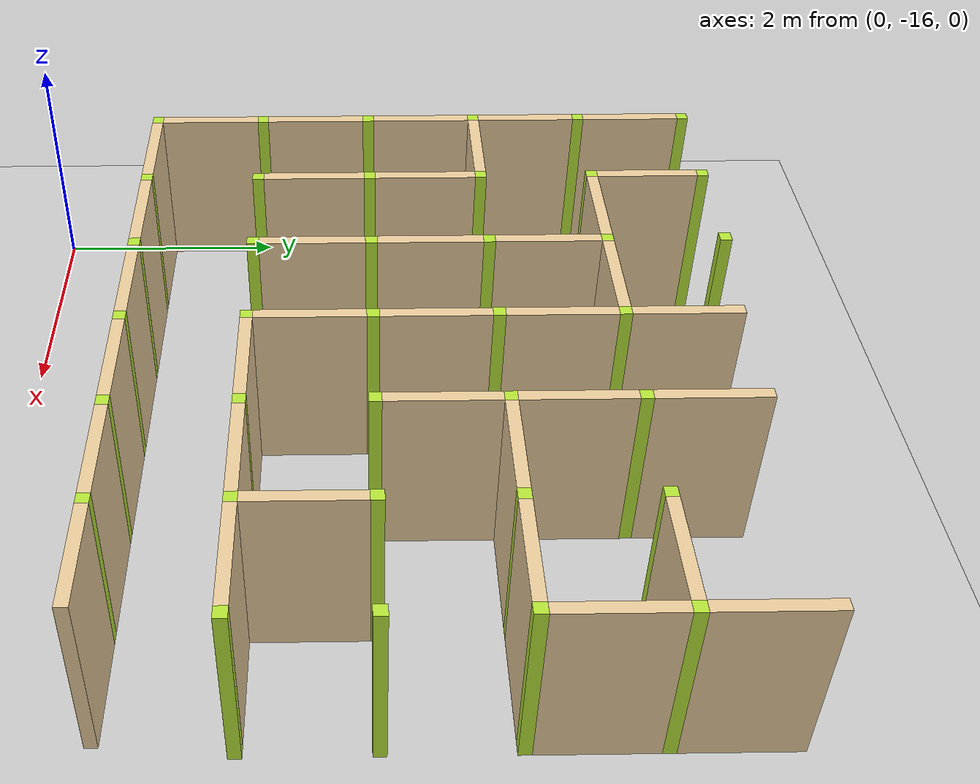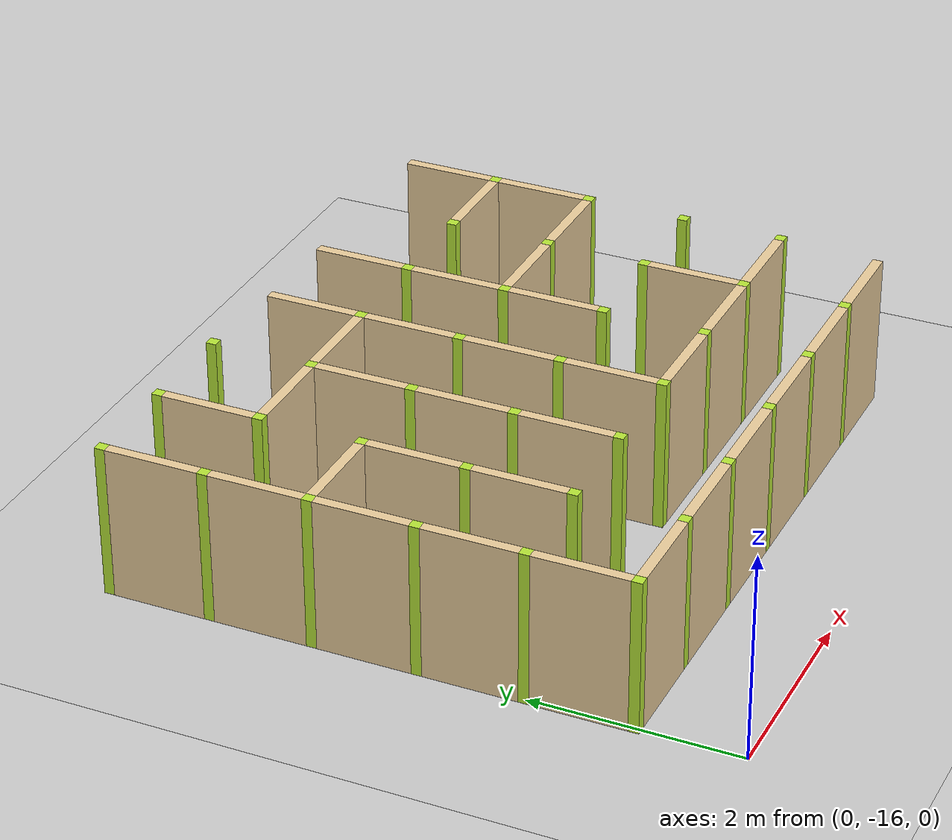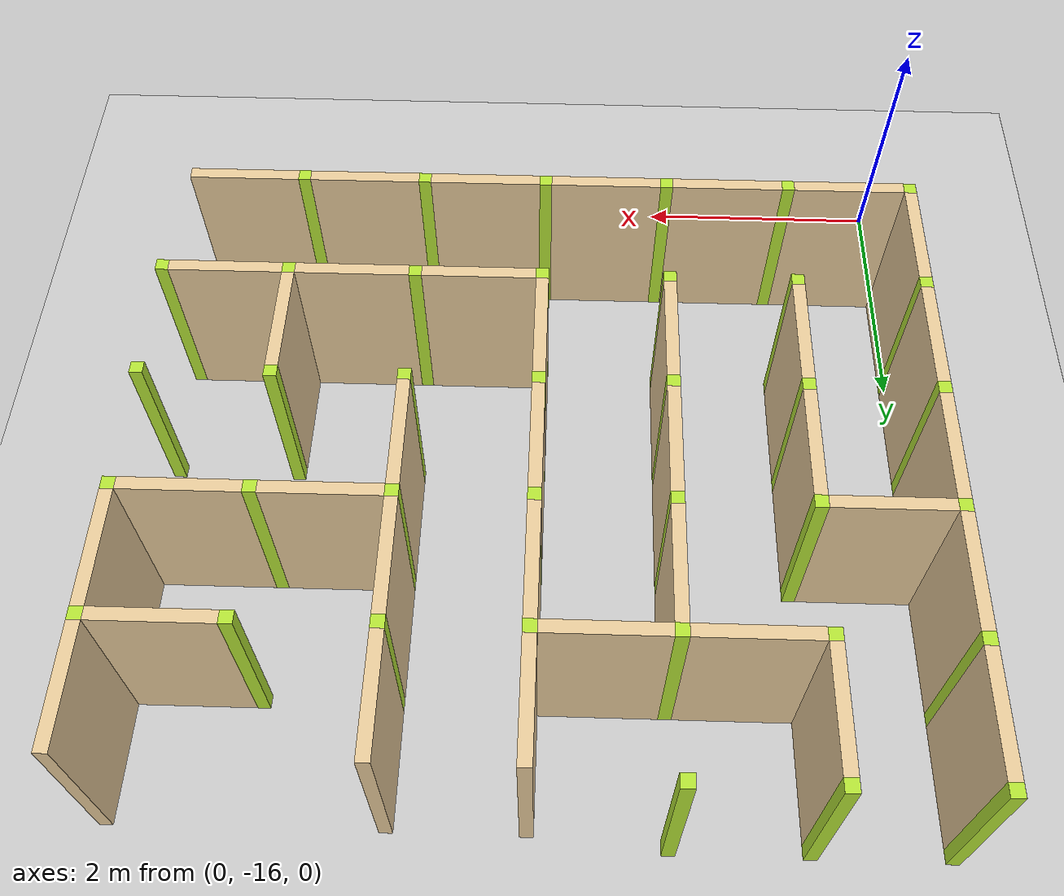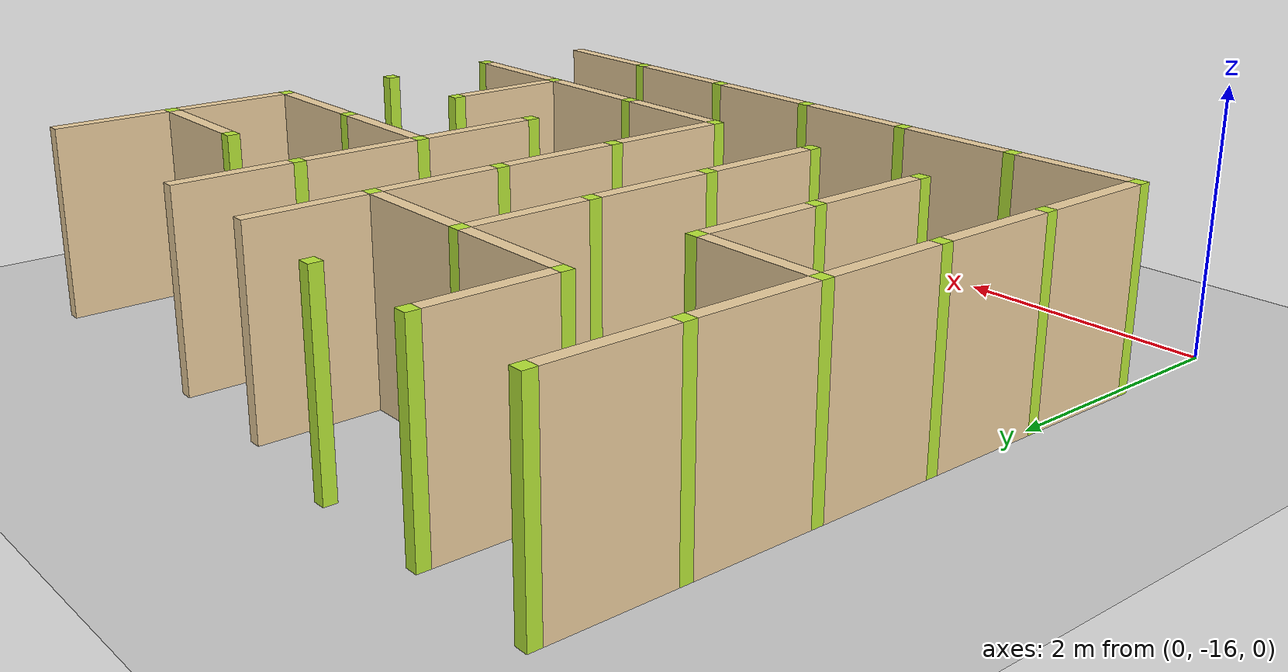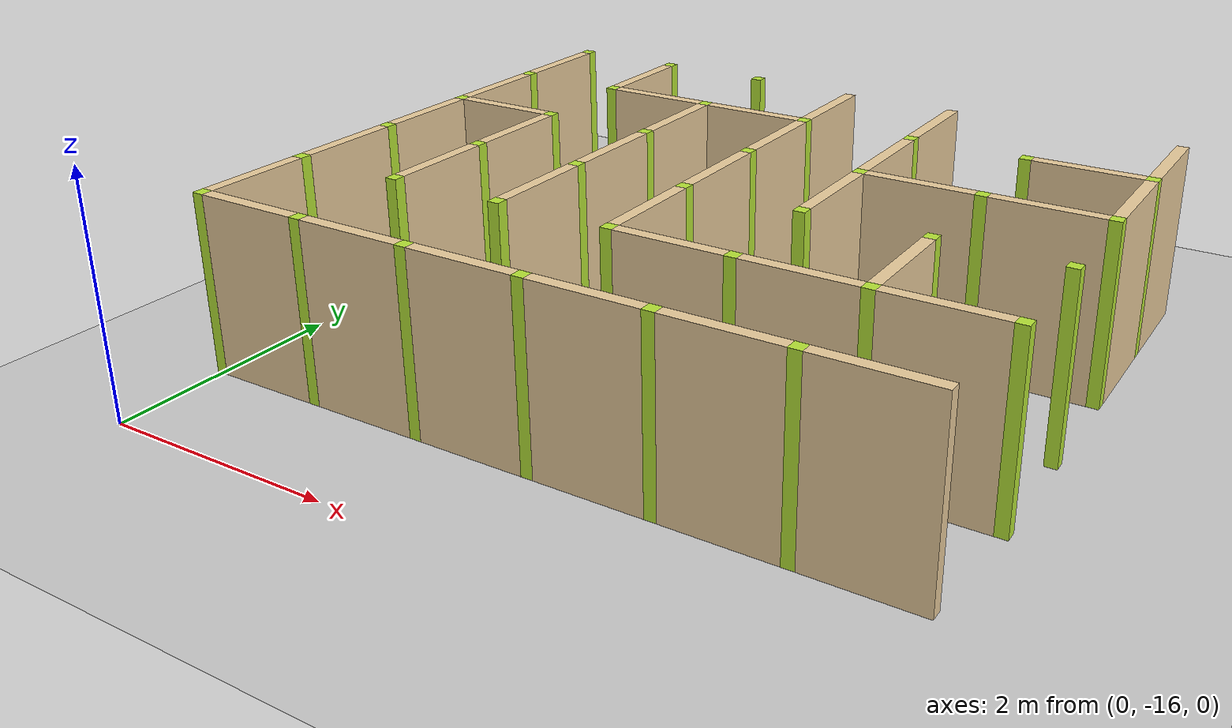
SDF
<sdf version="1.4">
 <world name="maze_world">
  <model name="ground">
   <static>true</static>
   <link name="ground_link">
    <collision name="collision1"><geometry><plane><normal>0 0 1</normal></plane></geometry></collision>
    <visual name="visual1"><geometry><plane><normal>0 0 1</normal><size>100 100</size></plane></geometry></visual>
   </link>
  </model>
  <model name="Untitled">
   <link name="Wall_0_10_v">
    <collision name="Wall_0_Collision">
     <geometry><box><size>0.9 0.1 1.5</size></box></geometry>
     <pose>0 0 0.75 0 -0 0</pose>
    </collision>
    <visual name="Wall_0_Visual">
     <pose>0 0 0.75 0 -0 0</pose>
     <geometry><box><size>0.9 0.1 1.5</size></box></geometry>
     <material>
      <script><uri>file://media/materials/scripts/gazebo.material</uri><name>Gazebo/Grey</name></script>
      <ambient>0.921569 0.807843 0.615686 1</ambient>
     </material>
     <meta><layer>0</layer></meta>
    </visual>
    <pose>0 -10.5 0 0 -0 1.5708</pose>
   </link>
   <link name="Joint_0_-10">
    <collision name="Wall_2_Collision">
     <geometry><box><size>0.1 0.1 1.5</size></box></geometry>
     <pose>0 0 0.75 0 -0 0</pose>
    </collision>
    <visual name="Wall_2_Visual">
     <pose>0 0 0.75 0 -0 0</pose>
     <geometry><box><size>0.1 0.1 1.5</size></box></geometry>
     <material>
      <script><uri>file://media/materials/scripts/gazebo.material</uri><name>Gazebo/Grey</name></script>
      <ambient>0.721569 0.907843 0.215686 1</ambient>
     </material>
     <meta><layer>0</layer></meta>
    </visual>
    <pose>0 -10 0 0 -0 0</pose>
   </link>
   <link name="Wall_1_10_v">
    <collision name="Wall_0_Collision">
     <geometry><box><size>0.9 0.1 1.5</size></box></geometry>
     <pose>0 0 0.75 0 -0 0</pose>
    </collision>
    <visual name="Wall_0_Visual">
     <pose>0 0 0.75 0 -0 0</pose>
     <geometry><box><size>0.9 0.1 1.5</size></box></geometry>
     <material>
      <script><uri>file://media/materials/scripts/gazebo.material</uri><name>Gazebo/Grey</name></script>
      <ambient>0.921569 0.807843 0.615686 1</ambient>
     </material>
     <meta><layer>0</layer></meta>
    </visual>
    <pose>1 -10.5 0 0 -0 1.5708</pose>
   </link>
   <link name="Joint_1_-10">
    <collision name="Wall_2_Collision">
     <geometry><box><size>0.1 0.1 1.5</size></box></geometry>
     <pose>0 0 0.75 0 -0 0</pose>
    </collision>
    <visual name="Wall_2_Visual">
     <pose>0 0 0.75 0 -0 0</pose>
     <geometry><box><size>0.1 0.1 1.5</size></box></geometry>
     <material>
      <script><uri>file://media/materials/scripts/gazebo.material</uri><name>Gazebo/Grey</name></script>
      <ambient>0.721569 0.907843 0.215686 1</ambient>
     </material>
     <meta><layer>0</layer></meta>
    </visual>
    <pose>1 -10 0 0 -0 0</pose>
   </link>
   <link name="Joint_2_-10">
    <collision name="Wall_2_Collision">
     <geometry><box><size>0.1 0.1 1.5</size></box></geometry>
     <pose>0 0 0.75 0 -0 0</pose>
    </collision>
    <visual name="Wall_2_Visual">
     <pose>0 0 0.75 0 -0 0</pose>
     <geometry><box><size>0.1 0.1 1.5</size></box></geometry>
     <material>
      <script><uri>file://media/materials/scripts/gazebo.material</uri><name>Gazebo/Grey</name></script>
      <ambient>0.721569 0.907843 0.215686 1</ambient>
     </material>
     <meta><layer>0</layer></meta>
    </visual>
    <pose>2 -10 0 0 -0 0</pose>
   </link>
   <link name="Wall_3_10_v">
    <collision name="Wall_0_Collision">
     <geometry><box><size>0.9 0.1 1.5</size></box></geometry>
     <pose>0 0 0.75 0 -0 0</pose>
    </collision>
    <visual name="Wall_0_Visual">
     <pose>0 0 0.75 0 -0 0</pose>
     <geometry><box><size>0.9 0.1 1.5</size></box></geometry>
     <material>
      <script><uri>file://media/materials/scripts/gazebo.material</uri><name>Gazebo/Grey</name></script>
      <ambient>0.921569 0.807843 0.615686 1</ambient>
     </material>
     <meta><layer>0</layer></meta>
    </visual>
    <pose>3 -10.5 0 0 -0 1.5708</pose>
   </link>
   <link name="Wall_4_10_v">
    <collision name="Wall_0_Collision">
     <geometry><box><size>0.9 0.1 1.5</size></box></geometry>
     <pose>0 0 0.75 0 -0 0</pose>
    </collision>
    <visual name="Wall_0_Visual">
     <pose>0 0 0.75 0 -0 0</pose>
     <geometry><box><size>0.9 0.1 1.5</size></box></geometry>
     <material>
      <script><uri>file://media/materials/scripts/gazebo.material</uri><name>Gazebo/Grey</name></script>
      <ambient>0.921569 0.807843 0.615686 1</ambient>
     </material>
     <meta><layer>0</layer></meta>
    </visual>
    <pose>4 -10.5 0 0 -0 1.5708</pose>
   </link>
   <link name="Wall_6_10_v">
    <collision name="Wall_0_Collision">
     <geometry><box><size>0.9 0.1 1.5</size></box></geometry>
     <pose>0 0 0.75 0 -0 0</pose>
    </collision>
    <visual name="Wall_0_Visual">
     <pose>0 0 0.75 0 -0 0</pose>
     <geometry><box><size>0.9 0.1 1.5</size></box></geometry>
     <material>
      <script><uri>file://media/materials/scripts/gazebo.material</uri><name>Gazebo/Grey</name></script>
      <ambient>0.921569 0.807843 0.615686 1</ambient>
     </material>
     <meta><layer>0</layer></meta>
    </visual>
    <pose>6 -10.5 0 0 -0 1.5708</pose>
   </link>
   <link name="Wall_0_11_v">
    <collision name="Wall_0_Collision">
     <geometry><box><size>0.9 0.1 1.5</size></box></geometry>
     <pose>0 0 0.75 0 -0 0</pose>
    </collision>
    <visual name="Wall_0_Visual">
     <pose>0 0 0.75 0 -0 0</pose>
     <geometry><box><size>0.9 0.1 1.5</size></box></geometry>
     <material>
      <script><uri>file://media/materials/scripts/gazebo.material</uri><name>Gazebo/Grey</name></script>
      <ambient>0.921569 0.807843 0.615686 1</ambient>
     </material>
     <meta><layer>0</layer></meta>
    </visual>
    <pose>0 -11.5 0 0 -0 1.5708</pose>
   </link>
   <link name="Joint_0_-11">
    <collision name="Wall_2_Collision">
     <geometry><box><size>0.1 0.1 1.5</size></box></geometry>
     <pose>0 0 0.75 0 -0 0</pose>
    </collision>
    <visual name="Wall_2_Visual">
     <pose>0 0 0.75 0 -0 0</pose>
     <geometry><box><size>0.1 0.1 1.5</size></box></geometry>
     <material>
      <script><uri>file://media/materials/scripts/gazebo.material</uri><name>Gazebo/Grey</name></script>
      <ambient>0.721569 0.907843 0.215686 1</ambient>
     </material>
     <meta><layer>0</layer></meta>
    </visual>
    <pose>0 -11 0 0 -0 0</pose>
   </link>
   <link name="Wall_1_11_h">
    <collision name="Wall_0_Collision">
     <geometry><box><size>0.9 0.1 1.5</size></box></geometry>
     <pose>0 0 0.75 0 -0 0</pose>
    </collision>
    <visual name="Wall_0_Visual">
     <pose>0 0 0.75 0 -0 0</pose>
     <geometry><box><size>0.9 0.1 1.5</size></box></geometry>
     <material>
      <script><uri>file://media/materials/scripts/gazebo.material</uri><name>Gazebo/Grey</name></script>
      <ambient>0.921569 0.807843 0.615686 1</ambient>
     </material>
     <meta><layer>0</layer></meta>
    </visual>
    <pose>1.5 -11 0 0 -0 0</pose>
   </link>
   <link name="Joint_1_-11">
    <collision name="Wall_2_Collision">
     <geometry><box><size>0.1 0.1 1.5</size></box></geometry>
     <pose>0 0 0.75 0 -0 0</pose>
    </collision>
    <visual name="Wall_2_Visual">
     <pose>0 0 0.75 0 -0 0</pose>
     <geometry><box><size>0.1 0.1 1.5</size></box></geometry>
     <material>
      <script><uri>file://media/materials/scripts/gazebo.material</uri><name>Gazebo/Grey</name></script>
      <ambient>0.721569 0.907843 0.215686 1</ambient>
     </material>
     <meta><layer>0</layer></meta>
    </visual>
    <pose>1 -11 0 0 -0 0</pose>
   </link>
   <link name="Wall_2_11_h">
    <collision name="Wall_0_Collision">
     <geometry><box><size>0.9 0.1 1.5</size></box></geometry>
     <pose>0 0 0.75 0 -0 0</pose>
    </collision>
    <visual name="Wall_0_Visual">
     <pose>0 0 0.75 0 -0 0</pose>
     <geometry><box><size>0.9 0.1 1.5</size></box></geometry>
     <material>
      <script><uri>file://media/materials/scripts/gazebo.material</uri><name>Gazebo/Grey</name></script>
      <ambient>0.921569 0.807843 0.615686 1</ambient>
     </material>
     <meta><layer>0</layer></meta>
    </visual>
    <pose>2.5 -11 0 0 -0 0</pose>
   </link>
   <link name="Wall_2_11_v">
    <collision name="Wall_0_Collision">
     <geometry><box><size>0.9 0.1 1.5</size></box></geometry>
     <pose>0 0 0.75 0 -0 0</pose>
    </collision>
    <visual name="Wall_0_Visual">
     <pose>0 0 0.75 0 -0 0</pose>
     <geometry><box><size>0.9 0.1 1.5</size></box></geometry>
     <material>
      <script><uri>file://media/materials/scripts/gazebo.material</uri><name>Gazebo/Grey</name></script>
      <ambient>0.921569 0.807843 0.615686 1</ambient>
     </material>
     <meta><layer>0</layer></meta>
    </visual>
    <pose>2 -11.5 0 0 -0 1.5708</pose>
   </link>
   <link name="Joint_2_-11">
    <collision name="Wall_2_Collision">
     <geometry><box><size>0.1 0.1 1.5</size></box></geometry>
     <pose>0 0 0.75 0 -0 0</pose>
    </collision>
    <visual name="Wall_2_Visual">
     <pose>0 0 0.75 0 -0 0</pose>
     <geometry><box><size>0.1 0.1 1.5</size></box></geometry>
     <material>
      <script><uri>file://media/materials/scripts/gazebo.material</uri><name>Gazebo/Grey</name></script>
      <ambient>0.721569 0.907843 0.215686 1</ambient>
     </material>
     <meta><layer>0</layer></meta>
    </visual>
    <pose>2 -11 0 0 -0 0</pose>
   </link>
   <link name="Wall_3_11_v">
    <collision name="Wall_0_Collision">
     <geometry><box><size>0.9 0.1 1.5</size></box></geometry>
     <pose>0 0 0.75 0 -0 0</pose>
    </collision>
    <visual name="Wall_0_Visual">
     <pose>0 0 0.75 0 -0 0</pose>
     <geometry><box><size>0.9 0.1 1.5</size></box></geometry>
     <material>
      <script><uri>file://media/materials/scripts/gazebo.material</uri><name>Gazebo/Grey</name></script>
      <ambient>0.921569 0.807843 0.615686 1</ambient>
     </material>
     <meta><layer>0</layer></meta>
    </visual>
    <pose>3 -11.5 0 0 -0 1.5708</pose>
   </link>
   <link name="Joint_3_-11">
    <collision name="Wall_2_Collision">
     <geometry><box><size>0.1 0.1 1.5</size></box></geometry>
     <pose>0 0 0.75 0 -0 0</pose>
    </collision>
    <visual name="Wall_2_Visual">
     <pose>0 0 0.75 0 -0 0</pose>
     <geometry><box><size>0.1 0.1 1.5</size></box></geometry>
     <material>
      <script><uri>file://media/materials/scripts/gazebo.material</uri><name>Gazebo/Grey</name></script>
      <ambient>0.721569 0.907843 0.215686 1</ambient>
     </material>
     <meta><layer>0</layer></meta>
    </visual>
    <pose>3 -11 0 0 -0 0</pose>
   </link>
   <link name="Wall_4_11_v">
    <collision name="Wall_0_Collision">
     <geometry><box><size>0.9 0.1 1.5</size></box></geometry>
     <pose>0 0 0.75 0 -0 0</pose>
    </collision>
    <visual name="Wall_0_Visual">
     <pose>0 0 0.75 0 -0 0</pose>
     <geometry><box><size>0.9 0.1 1.5</size></box></geometry>
     <material>
      <script><uri>file://media/materials/scripts/gazebo.material</uri><name>Gazebo/Grey</name></script>
      <ambient>0.921569 0.807843 0.615686 1</ambient>
     </material>
     <meta><layer>0</layer></meta>
    </visual>
    <pose>4 -11.5 0 0 -0 1.5708</pose>
   </link>
   <link name="Joint_4_-11">
    <collision name="Wall_2_Collision">
     <geometry><box><size>0.1 0.1 1.5</size></box></geometry>
     <pose>0 0 0.75 0 -0 0</pose>
    </collision>
    <visual name="Wall_2_Visual">
     <pose>0 0 0.75 0 -0 0</pose>
     <geometry><box><size>0.1 0.1 1.5</size></box></geometry>
     <material>
      <script><uri>file://media/materials/scripts/gazebo.material</uri><name>Gazebo/Grey</name></script>
      <ambient>0.721569 0.907843 0.215686 1</ambient>
     </material>
     <meta><layer>0</layer></meta>
    </visual>
    <pose>4 -11 0 0 -0 0</pose>
   </link>
   <link name="Wall_5_11_h">
    <collision name="Wall_0_Collision">
     <geometry><box><size>0.9 0.1 1.5</size></box></geometry>
     <pose>0 0 0.75 0 -0 0</pose>
    </collision>
    <visual name="Wall_0_Visual">
     <pose>0 0 0.75 0 -0 0</pose>
     <geometry><box><size>0.9 0.1 1.5</size></box></geometry>
     <material>
      <script><uri>file://media/materials/scripts/gazebo.material</uri><name>Gazebo/Grey</name></script>
      <ambient>0.921569 0.807843 0.615686 1</ambient>
     </material>
     <meta><layer>0</layer></meta>
    </visual>
    <pose>5.5 -11 0 0 -0 0</pose>
   </link>
   <link name="Joint_5_-11">
    <collision name="Wall_2_Collision">
     <geometry><box><size>0.1 0.1 1.5</size></box></geometry>
     <pose>0 0 0.75 0 -0 0</pose>
    </collision>
    <visual name="Wall_2_Visual">
     <pose>0 0 0.75 0 -0 0</pose>
     <geometry><box><size>0.1 0.1 1.5</size></box></geometry>
     <material>
      <script><uri>file://media/materials/scripts/gazebo.material</uri><name>Gazebo/Grey</name></script>
      <ambient>0.721569 0.907843 0.215686 1</ambient>
     </material>
     <meta><layer>0</layer></meta>
    </visual>
    <pose>5 -11 0 0 -0 0</pose>
   </link>
   <link name="Wall_6_11_v">
    <collision name="Wall_0_Collision">
     <geometry><box><size>0.9 0.1 1.5</size></box></geometry>
     <pose>0 0 0.75 0 -0 0</pose>
    </collision>
    <visual name="Wall_0_Visual">
     <pose>0 0 0.75 0 -0 0</pose>
     <geometry><box><size>0.9 0.1 1.5</size></box></geometry>
     <material>
      <script><uri>file://media/materials/scripts/gazebo.material</uri><name>Gazebo/Grey</name></script>
      <ambient>0.921569 0.807843 0.615686 1</ambient>
     </material>
     <meta><layer>0</layer></meta>
    </visual>
    <pose>6 -11.5 0 0 -0 1.5708</pose>
   </link>
   <link name="Joint_6_-11">
    <collision name="Wall_2_Collision">
     <geometry><box><size>0.1 0.1 1.5</size></box></geometry>
     <pose>0 0 0.75 0 -0 0</pose>
    </collision>
    <visual name="Wall_2_Visual">
     <pose>0 0 0.75 0 -0 0</pose>
     <geometry><box><size>0.1 0.1 1.5</size></box></geometry>
     <material>
      <script><uri>file://media/materials/scripts/gazebo.material</uri><name>Gazebo/Grey</name></script>
      <ambient>0.721569 0.907843 0.215686 1</ambient>
     </material>
     <meta><layer>0</layer></meta>
    </visual>
    <pose>6 -11 0 0 -0 0</pose>
   </link>
   <link name="Wall_0_12_h">
    <collision name="Wall_0_Collision">
     <geometry><box><size>0.9 0.1 1.5</size></box></geometry>
     <pose>0 0 0.75 0 -0 0</pose>
    </collision>
    <visual name="Wall_0_Visual">
     <pose>0 0 0.75 0 -0 0</pose>
     <geometry><box><size>0.9 0.1 1.5</size></box></geometry>
     <material>
      <script><uri>file://media/materials/scripts/gazebo.material</uri><name>Gazebo/Grey</name></script>
      <ambient>0.921569 0.807843 0.615686 1</ambient>
     </material>
     <meta><layer>0</layer></meta>
    </visual>
    <pose>0.5 -12 0 0 -0 0</pose>
   </link>
   <link name="Wall_0_12_v">
    <collision name="Wall_0_Collision">
     <geometry><box><size>0.9 0.1 1.5</size></box></geometry>
     <pose>0 0 0.75 0 -0 0</pose>
    </collision>
    <visual name="Wall_0_Visual">
     <pose>0 0 0.75 0 -0 0</pose>
     <geometry><box><size>0.9 0.1 1.5</size></box></geometry>
     <material>
      <script><uri>file://media/materials/scripts/gazebo.material</uri><name>Gazebo/Grey</name></script>
      <ambient>0.921569 0.807843 0.615686 1</ambient>
     </material>
     <meta><layer>0</layer></meta>
    </visual>
    <pose>0 -12.5 0 0 -0 1.5708</pose>
   </link>
   <link name="Joint_0_-12">
    <collision name="Wall_2_Collision">
     <geometry><box><size>0.1 0.1 1.5</size></box></geometry>
     <pose>0 0 0.75 0 -0 0</pose>
    </collision>
    <visual name="Wall_2_Visual">
     <pose>0 0 0.75 0 -0 0</pose>
     <geometry><box><size>0.1 0.1 1.5</size></box></geometry>
     <material>
      <script><uri>file://media/materials/scripts/gazebo.material</uri><name>Gazebo/Grey</name></script>
      <ambient>0.721569 0.907843 0.215686 1</ambient>
     </material>
     <meta><layer>0</layer></meta>
    </visual>
    <pose>0 -12 0 0 -0 0</pose>
   </link>
   <link name="Wall_1_12_v">
    <collision name="Wall_0_Collision">
     <geometry><box><size>0.9 0.1 1.5</size></box></geometry>
     <pose>0 0 0.75 0 -0 0</pose>
    </collision>
    <visual name="Wall_0_Visual">
     <pose>0 0 0.75 0 -0 0</pose>
     <geometry><box><size>0.9 0.1 1.5</size></box></geometry>
     <material>
      <script><uri>file://media/materials/scripts/gazebo.material</uri><name>Gazebo/Grey</name></script>
      <ambient>0.921569 0.807843 0.615686 1</ambient>
     </material>
     <meta><layer>0</layer></meta>
    </visual>
    <pose>1 -12.5 0 0 -0 1.5708</pose>
   </link>
   <link name="Joint_1_-12">
    <collision name="Wall_2_Collision">
     <geometry><box><size>0.1 0.1 1.5</size></box></geometry>
     <pose>0 0 0.75 0 -0 0</pose>
    </collision>
    <visual name="Wall_2_Visual">
     <pose>0 0 0.75 0 -0 0</pose>
     <geometry><box><size>0.1 0.1 1.5</size></box></geometry>
     <material>
      <script><uri>file://media/materials/scripts/gazebo.material</uri><name>Gazebo/Grey</name></script>
      <ambient>0.721569 0.907843 0.215686 1</ambient>
     </material>
     <meta><layer>0</layer></meta>
    </visual>
    <pose>1 -12 0 0 -0 0</pose>
   </link>
   <link name="Wall_2_12_v">
    <collision name="Wall_0_Collision">
     <geometry><box><size>0.9 0.1 1.5</size></box></geometry>
     <pose>0 0 0.75 0 -0 0</pose>
    </collision>
    <visual name="Wall_0_Visual">
     <pose>0 0 0.75 0 -0 0</pose>
     <geometry><box><size>0.9 0.1 1.5</size></box></geometry>
     <material>
      <script><uri>file://media/materials/scripts/gazebo.material</uri><name>Gazebo/Grey</name></script>
      <ambient>0.921569 0.807843 0.615686 1</ambient>
     </material>
     <meta><layer>0</layer></meta>
    </visual>
    <pose>2 -12.5 0 0 -0 1.5708</pose>
   </link>
   <link name="Joint_2_-12">
    <collision name="Wall_2_Collision">
     <geometry><box><size>0.1 0.1 1.5</size></box></geometry>
     <pose>0 0 0.75 0 -0 0</pose>
    </collision>
    <visual name="Wall_2_Visual">
     <pose>0 0 0.75 0 -0 0</pose>
     <geometry><box><size>0.1 0.1 1.5</size></box></geometry>
     <material>
      <script><uri>file://media/materials/scripts/gazebo.material</uri><name>Gazebo/Grey</name></script>
      <ambient>0.721569 0.907843 0.215686 1</ambient>
     </material>
     <meta><layer>0</layer></meta>
    </visual>
    <pose>2 -12 0 0 -0 0</pose>
   </link>
   <link name="Wall_3_12_v">
    <collision name="Wall_0_Collision">
     <geometry><box><size>0.9 0.1 1.5</size></box></geometry>
     <pose>0 0 0.75 0 -0 0</pose>
    </collision>
    <visual name="Wall_0_Visual">
     <pose>0 0 0.75 0 -0 0</pose>
     <geometry><box><size>0.9 0.1 1.5</size></box></geometry>
     <material>
      <script><uri>file://media/materials/scripts/gazebo.material</uri><name>Gazebo/Grey</name></script>
      <ambient>0.921569 0.807843 0.615686 1</ambient>
     </material>
     <meta><layer>0</layer></meta>
    </visual>
    <pose>3 -12.5 0 0 -0 1.5708</pose>
   </link>
   <link name="Joint_3_-12">
    <collision name="Wall_2_Collision">
     <geometry><box><size>0.1 0.1 1.5</size></box></geometry>
     <pose>0 0 0.75 0 -0 0</pose>
    </collision>
    <visual name="Wall_2_Visual">
     <pose>0 0 0.75 0 -0 0</pose>
     <geometry><box><size>0.1 0.1 1.5</size></box></geometry>
     <material>
      <script><uri>file://media/materials/scripts/gazebo.material</uri><name>Gazebo/Grey</name></script>
      <ambient>0.721569 0.907843 0.215686 1</ambient>
     </material>
     <meta><layer>0</layer></meta>
    </visual>
    <pose>3 -12 0 0 -0 0</pose>
   </link>
   <link name="Wall_4_12_h">
    <collision name="Wall_0_Collision">
     <geometry><box><size>0.9 0.1 1.5</size></box></geometry>
     <pose>0 0 0.75 0 -0 0</pose>
    </collision>
    <visual name="Wall_0_Visual">
     <pose>0 0 0.75 0 -0 0</pose>
     <geometry><box><size>0.9 0.1 1.5</size></box></geometry>
     <material>
      <script><uri>file://media/materials/scripts/gazebo.material</uri><name>Gazebo/Grey</name></script>
      <ambient>0.921569 0.807843 0.615686 1</ambient>
     </material>
     <meta><layer>0</layer></meta>
    </visual>
    <pose>4.5 -12 0 0 -0 0</pose>
   </link>
   <link name="Wall_4_12_v">
    <collision name="Wall_0_Collision">
     <geometry><box><size>0.9 0.1 1.5</size></box></geometry>
     <pose>0 0 0.75 0 -0 0</pose>
    </collision>
    <visual name="Wall_0_Visual">
     <pose>0 0 0.75 0 -0 0</pose>
     <geometry><box><size>0.9 0.1 1.5</size></box></geometry>
     <material>
      <script><uri>file://media/materials/scripts/gazebo.material</uri><name>Gazebo/Grey</name></script>
      <ambient>0.921569 0.807843 0.615686 1</ambient>
     </material>
     <meta><layer>0</layer></meta>
    </visual>
    <pose>4 -12.5 0 0 -0 1.5708</pose>
   </link>
   <link name="Joint_4_-12">
    <collision name="Wall_2_Collision">
     <geometry><box><size>0.1 0.1 1.5</size></box></geometry>
     <pose>0 0 0.75 0 -0 0</pose>
    </collision>
    <visual name="Wall_2_Visual">
     <pose>0 0 0.75 0 -0 0</pose>
     <geometry><box><size>0.1 0.1 1.5</size></box></geometry>
     <material>
      <script><uri>file://media/materials/scripts/gazebo.material</uri><name>Gazebo/Grey</name></script>
      <ambient>0.721569 0.907843 0.215686 1</ambient>
     </material>
     <meta><layer>0</layer></meta>
    </visual>
    <pose>4 -12 0 0 -0 0</pose>
   </link>
   <link name="Wall_5_12_h">
    <collision name="Wall_0_Collision">
     <geometry><box><size>0.9 0.1 1.5</size></box></geometry>
     <pose>0 0 0.75 0 -0 0</pose>
    </collision>
    <visual name="Wall_0_Visual">
     <pose>0 0 0.75 0 -0 0</pose>
     <geometry><box><size>0.9 0.1 1.5</size></box></geometry>
     <material>
      <script><uri>file://media/materials/scripts/gazebo.material</uri><name>Gazebo/Grey</name></script>
      <ambient>0.921569 0.807843 0.615686 1</ambient>
     </material>
     <meta><layer>0</layer></meta>
    </visual>
    <pose>5.5 -12 0 0 -0 0</pose>
   </link>
   <link name="Joint_5_-12">
    <collision name="Wall_2_Collision">
     <geometry><box><size>0.1 0.1 1.5</size></box></geometry>
     <pose>0 0 0.75 0 -0 0</pose>
    </collision>
    <visual name="Wall_2_Visual">
     <pose>0 0 0.75 0 -0 0</pose>
     <geometry><box><size>0.1 0.1 1.5</size></box></geometry>
     <material>
      <script><uri>file://media/materials/scripts/gazebo.material</uri><name>Gazebo/Grey</name></script>
      <ambient>0.721569 0.907843 0.215686 1</ambient>
     </material>
     <meta><layer>0</layer></meta>
    </visual>
    <pose>5 -12 0 0 -0 0</pose>
   </link>
   <link name="Joint_6_-12">
    <collision name="Wall_2_Collision">
     <geometry><box><size>0.1 0.1 1.5</size></box></geometry>
     <pose>0 0 0.75 0 -0 0</pose>
    </collision>
    <visual name="Wall_2_Visual">
     <pose>0 0 0.75 0 -0 0</pose>
     <geometry><box><size>0.1 0.1 1.5</size></box></geometry>
     <material>
      <script><uri>file://media/materials/scripts/gazebo.material</uri><name>Gazebo/Grey</name></script>
      <ambient>0.721569 0.907843 0.215686 1</ambient>
     </material>
     <meta><layer>0</layer></meta>
    </visual>
    <pose>6 -12 0 0 -0 0</pose>
   </link>
   <link name="Wall_0_13_v">
    <collision name="Wall_0_Collision">
     <geometry><box><size>0.9 0.1 1.5</size></box></geometry>
     <pose>0 0 0.75 0 -0 0</pose>
    </collision>
    <visual name="Wall_0_Visual">
     <pose>0 0 0.75 0 -0 0</pose>
     <geometry><box><size>0.9 0.1 1.5</size></box></geometry>
     <material>
      <script><uri>file://media/materials/scripts/gazebo.material</uri><name>Gazebo/Grey</name></script>
      <ambient>0.921569 0.807843 0.615686 1</ambient>
     </material>
     <meta><layer>0</layer></meta>
    </visual>
    <pose>0 -13.5 0 0 -0 1.5708</pose>
   </link>
   <link name="Joint_0_-13">
    <collision name="Wall_2_Collision">
     <geometry><box><size>0.1 0.1 1.5</size></box></geometry>
     <pose>0 0 0.75 0 -0 0</pose>
    </collision>
    <visual name="Wall_2_Visual">
     <pose>0 0 0.75 0 -0 0</pose>
     <geometry><box><size>0.1 0.1 1.5</size></box></geometry>
     <material>
      <script><uri>file://media/materials/scripts/gazebo.material</uri><name>Gazebo/Grey</name></script>
      <ambient>0.721569 0.907843 0.215686 1</ambient>
     </material>
     <meta><layer>0</layer></meta>
    </visual>
    <pose>0 -13 0 0 -0 0</pose>
   </link>
   <link name="Wall_1_13_v">
    <collision name="Wall_0_Collision">
     <geometry><box><size>0.9 0.1 1.5</size></box></geometry>
     <pose>0 0 0.75 0 -0 0</pose>
    </collision>
    <visual name="Wall_0_Visual">
     <pose>0 0 0.75 0 -0 0</pose>
     <geometry><box><size>0.9 0.1 1.5</size></box></geometry>
     <material>
      <script><uri>file://media/materials/scripts/gazebo.material</uri><name>Gazebo/Grey</name></script>
      <ambient>0.921569 0.807843 0.615686 1</ambient>
     </material>
     <meta><layer>0</layer></meta>
    </visual>
    <pose>1 -13.5 0 0 -0 1.5708</pose>
   </link>
   <link name="Joint_1_-13">
    <collision name="Wall_2_Collision">
     <geometry><box><size>0.1 0.1 1.5</size></box></geometry>
     <pose>0 0 0.75 0 -0 0</pose>
    </collision>
    <visual name="Wall_2_Visual">
     <pose>0 0 0.75 0 -0 0</pose>
     <geometry><box><size>0.1 0.1 1.5</size></box></geometry>
     <material>
      <script><uri>file://media/materials/scripts/gazebo.material</uri><name>Gazebo/Grey</name></script>
      <ambient>0.721569 0.907843 0.215686 1</ambient>
     </material>
     <meta><layer>0</layer></meta>
    </visual>
    <pose>1 -13 0 0 -0 0</pose>
   </link>
   <link name="Wall_2_13_v">
    <collision name="Wall_0_Collision">
     <geometry><box><size>0.9 0.1 1.5</size></box></geometry>
     <pose>0 0 0.75 0 -0 0</pose>
    </collision>
    <visual name="Wall_0_Visual">
     <pose>0 0 0.75 0 -0 0</pose>
     <geometry><box><size>0.9 0.1 1.5</size></box></geometry>
     <material>
      <script><uri>file://media/materials/scripts/gazebo.material</uri><name>Gazebo/Grey</name></script>
      <ambient>0.921569 0.807843 0.615686 1</ambient>
     </material>
     <meta><layer>0</layer></meta>
    </visual>
    <pose>2 -13.5 0 0 -0 1.5708</pose>
   </link>
   <link name="Joint_2_-13">
    <collision name="Wall_2_Collision">
     <geometry><box><size>0.1 0.1 1.5</size></box></geometry>
     <pose>0 0 0.75 0 -0 0</pose>
    </collision>
    <visual name="Wall_2_Visual">
     <pose>0 0 0.75 0 -0 0</pose>
     <geometry><box><size>0.1 0.1 1.5</size></box></geometry>
     <material>
      <script><uri>file://media/materials/scripts/gazebo.material</uri><name>Gazebo/Grey</name></script>
      <ambient>0.721569 0.907843 0.215686 1</ambient>
     </material>
     <meta><layer>0</layer></meta>
    </visual>
    <pose>2 -13 0 0 -0 0</pose>
   </link>
   <link name="Wall_3_13_v">
    <collision name="Wall_0_Collision">
     <geometry><box><size>0.9 0.1 1.5</size></box></geometry>
     <pose>0 0 0.75 0 -0 0</pose>
    </collision>
    <visual name="Wall_0_Visual">
     <pose>0 0 0.75 0 -0 0</pose>
     <geometry><box><size>0.9 0.1 1.5</size></box></geometry>
     <material>
      <script><uri>file://media/materials/scripts/gazebo.material</uri><name>Gazebo/Grey</name></script>
      <ambient>0.921569 0.807843 0.615686 1</ambient>
     </material>
     <meta><layer>0</layer></meta>
    </visual>
    <pose>3 -13.5 0 0 -0 1.5708</pose>
   </link>
   <link name="Joint_3_-13">
    <collision name="Wall_2_Collision">
     <geometry><box><size>0.1 0.1 1.5</size></box></geometry>
     <pose>0 0 0.75 0 -0 0</pose>
    </collision>
    <visual name="Wall_2_Visual">
     <pose>0 0 0.75 0 -0 0</pose>
     <geometry><box><size>0.1 0.1 1.5</size></box></geometry>
     <material>
      <script><uri>file://media/materials/scripts/gazebo.material</uri><name>Gazebo/Grey</name></script>
      <ambient>0.721569 0.907843 0.215686 1</ambient>
     </material>
     <meta><layer>0</layer></meta>
    </visual>
    <pose>3 -13 0 0 -0 0</pose>
   </link>
   <link name="Joint_4_-13">
    <collision name="Wall_2_Collision">
     <geometry><box><size>0.1 0.1 1.5</size></box></geometry>
     <pose>0 0 0.75 0 -0 0</pose>
    </collision>
    <visual name="Wall_2_Visual">
     <pose>0 0 0.75 0 -0 0</pose>
     <geometry><box><size>0.1 0.1 1.5</size></box></geometry>
     <material>
      <script><uri>file://media/materials/scripts/gazebo.material</uri><name>Gazebo/Grey</name></script>
      <ambient>0.721569 0.907843 0.215686 1</ambient>
     </material>
     <meta><layer>0</layer></meta>
    </visual>
    <pose>4 -13 0 0 -0 0</pose>
   </link>
   <link name="Wall_5_13_v">
    <collision name="Wall_0_Collision">
     <geometry><box><size>0.9 0.1 1.5</size></box></geometry>
     <pose>0 0 0.75 0 -0 0</pose>
    </collision>
    <visual name="Wall_0_Visual">
     <pose>0 0 0.75 0 -0 0</pose>
     <geometry><box><size>0.9 0.1 1.5</size></box></geometry>
     <material>
      <script><uri>file://media/materials/scripts/gazebo.material</uri><name>Gazebo/Grey</name></script>
      <ambient>0.921569 0.807843 0.615686 1</ambient>
     </material>
     <meta><layer>0</layer></meta>
    </visual>
    <pose>5 -13.5 0 0 -0 1.5708</pose>
   </link>
   <link name="Joint_5_-13">
    <collision name="Wall_2_Collision">
     <geometry><box><size>0.1 0.1 1.5</size></box></geometry>
     <pose>0 0 0.75 0 -0 0</pose>
    </collision>
    <visual name="Wall_2_Visual">
     <pose>0 0 0.75 0 -0 0</pose>
     <geometry><box><size>0.1 0.1 1.5</size></box></geometry>
     <material>
      <script><uri>file://media/materials/scripts/gazebo.material</uri><name>Gazebo/Grey</name></script>
      <ambient>0.721569 0.907843 0.215686 1</ambient>
     </material>
     <meta><layer>0</layer></meta>
    </visual>
    <pose>5 -13 0 0 -0 0</pose>
   </link>
   <link name="Joint_6_-13">
    <collision name="Wall_2_Collision">
     <geometry><box><size>0.1 0.1 1.5</size></box></geometry>
     <pose>0 0 0.75 0 -0 0</pose>
    </collision>
    <visual name="Wall_2_Visual">
     <pose>0 0 0.75 0 -0 0</pose>
     <geometry><box><size>0.1 0.1 1.5</size></box></geometry>
     <material>
      <script><uri>file://media/materials/scripts/gazebo.material</uri><name>Gazebo/Grey</name></script>
      <ambient>0.721569 0.907843 0.215686 1</ambient>
     </material>
     <meta><layer>0</layer></meta>
    </visual>
    <pose>6 -13 0 0 -0 0</pose>
   </link>
   <link name="Wall_0_14_v">
    <collision name="Wall_0_Collision">
     <geometry><box><size>0.9 0.1 1.5</size></box></geometry>
     <pose>0 0 0.75 0 -0 0</pose>
    </collision>
    <visual name="Wall_0_Visual">
     <pose>0 0 0.75 0 -0 0</pose>
     <geometry><box><size>0.9 0.1 1.5</size></box></geometry>
     <material>
      <script><uri>file://media/materials/scripts/gazebo.material</uri><name>Gazebo/Grey</name></script>
      <ambient>0.921569 0.807843 0.615686 1</ambient>
     </material>
     <meta><layer>0</layer></meta>
    </visual>
    <pose>0 -14.5 0 0 -0 1.5708</pose>
   </link>
   <link name="Joint_0_-14">
    <collision name="Wall_2_Collision">
     <geometry><box><size>0.1 0.1 1.5</size></box></geometry>
     <pose>0 0 0.75 0 -0 0</pose>
    </collision>
    <visual name="Wall_2_Visual">
     <pose>0 0 0.75 0 -0 0</pose>
     <geometry><box><size>0.1 0.1 1.5</size></box></geometry>
     <material>
      <script><uri>file://media/materials/scripts/gazebo.material</uri><name>Gazebo/Grey</name></script>
      <ambient>0.721569 0.907843 0.215686 1</ambient>
     </material>
     <meta><layer>0</layer></meta>
    </visual>
    <pose>0 -14 0 0 -0 0</pose>
   </link>
   <link name="Wall_0_15_h">
    <collision name="Wall_0_Collision">
     <geometry><box><size>0.9 0.1 1.5</size></box></geometry>
     <pose>0 0 0.75 0 -0 0</pose>
    </collision>
    <visual name="Wall_0_Visual">
     <pose>0 0 0.75 0 -0 0</pose>
     <geometry><box><size>0.9 0.1 1.5</size></box></geometry>
     <material>
      <script><uri>file://media/materials/scripts/gazebo.material</uri><name>Gazebo/Grey</name></script>
      <ambient>0.921569 0.807843 0.615686 1</ambient>
     </material>
     <meta><layer>0</layer></meta>
    </visual>
    <pose>0.5 -15 0 0 -0 0</pose>
   </link>
   <link name="Joint_0_-15">
    <collision name="Wall_2_Collision">
     <geometry><box><size>0.1 0.1 1.5</size></box></geometry>
     <pose>0 0 0.75 0 -0 0</pose>
    </collision>
    <visual name="Wall_2_Visual">
     <pose>0 0 0.75 0 -0 0</pose>
     <geometry><box><size>0.1 0.1 1.5</size></box></geometry>
     <material>
      <script><uri>file://media/materials/scripts/gazebo.material</uri><name>Gazebo/Grey</name></script>
      <ambient>0.721569 0.907843 0.215686 1</ambient>
     </material>
     <meta><layer>0</layer></meta>
    </visual>
    <pose>0 -15 0 0 -0 0</pose>
   </link>
   <link name="Joint_1_-14">
    <collision name="Wall_2_Collision">
     <geometry><box><size>0.1 0.1 1.5</size></box></geometry>
     <pose>0 0 0.75 0 -0 0</pose>
    </collision>
    <visual name="Wall_2_Visual">
     <pose>0 0 0.75 0 -0 0</pose>
     <geometry><box><size>0.1 0.1 1.5</size></box></geometry>
     <material>
      <script><uri>file://media/materials/scripts/gazebo.material</uri><name>Gazebo/Grey</name></script>
      <ambient>0.721569 0.907843 0.215686 1</ambient>
     </material>
     <meta><layer>0</layer></meta>
    </visual>
    <pose>1 -14 0 0 -0 0</pose>
   </link>
   <link name="Wall_1_15_h">
    <collision name="Wall_0_Collision">
     <geometry><box><size>0.9 0.1 1.5</size></box></geometry>
     <pose>0 0 0.75 0 -0 0</pose>
    </collision>
    <visual name="Wall_0_Visual">
     <pose>0 0 0.75 0 -0 0</pose>
     <geometry><box><size>0.9 0.1 1.5</size></box></geometry>
     <material>
      <script><uri>file://media/materials/scripts/gazebo.material</uri><name>Gazebo/Grey</name></script>
      <ambient>0.921569 0.807843 0.615686 1</ambient>
     </material>
     <meta><layer>0</layer></meta>
    </visual>
    <pose>1.5 -15 0 0 -0 0</pose>
   </link>
   <link name="Joint_1_-15">
    <collision name="Wall_2_Collision">
     <geometry><box><size>0.1 0.1 1.5</size></box></geometry>
     <pose>0 0 0.75 0 -0 0</pose>
    </collision>
    <visual name="Wall_2_Visual">
     <pose>0 0 0.75 0 -0 0</pose>
     <geometry><box><size>0.1 0.1 1.5</size></box></geometry>
     <material>
      <script><uri>file://media/materials/scripts/gazebo.material</uri><name>Gazebo/Grey</name></script>
      <ambient>0.721569 0.907843 0.215686 1</ambient>
     </material>
     <meta><layer>0</layer></meta>
    </visual>
    <pose>1 -15 0 0 -0 0</pose>
   </link>
   <link name="Joint_2_-14">
    <collision name="Wall_2_Collision">
     <geometry><box><size>0.1 0.1 1.5</size></box></geometry>
     <pose>0 0 0.75 0 -0 0</pose>
    </collision>
    <visual name="Wall_2_Visual">
     <pose>0 0 0.75 0 -0 0</pose>
     <geometry><box><size>0.1 0.1 1.5</size></box></geometry>
     <material>
      <script><uri>file://media/materials/scripts/gazebo.material</uri><name>Gazebo/Grey</name></script>
      <ambient>0.721569 0.907843 0.215686 1</ambient>
     </material>
     <meta><layer>0</layer></meta>
    </visual>
    <pose>2 -14 0 0 -0 0</pose>
   </link>
   <link name="Wall_2_15_h">
    <collision name="Wall_0_Collision">
     <geometry><box><size>0.9 0.1 1.5</size></box></geometry>
     <pose>0 0 0.75 0 -0 0</pose>
    </collision>
    <visual name="Wall_0_Visual">
     <pose>0 0 0.75 0 -0 0</pose>
     <geometry><box><size>0.9 0.1 1.5</size></box></geometry>
     <material>
      <script><uri>file://media/materials/scripts/gazebo.material</uri><name>Gazebo/Grey</name></script>
      <ambient>0.921569 0.807843 0.615686 1</ambient>
     </material>
     <meta><layer>0</layer></meta>
    </visual>
    <pose>2.5 -15 0 0 -0 0</pose>
   </link>
   <link name="Joint_2_-15">
    <collision name="Wall_2_Collision">
     <geometry><box><size>0.1 0.1 1.5</size></box></geometry>
     <pose>0 0 0.75 0 -0 0</pose>
    </collision>
    <visual name="Wall_2_Visual">
     <pose>0 0 0.75 0 -0 0</pose>
     <geometry><box><size>0.1 0.1 1.5</size></box></geometry>
     <material>
      <script><uri>file://media/materials/scripts/gazebo.material</uri><name>Gazebo/Grey</name></script>
      <ambient>0.721569 0.907843 0.215686 1</ambient>
     </material>
     <meta><layer>0</layer></meta>
    </visual>
    <pose>2 -15 0 0 -0 0</pose>
   </link>
   <link name="Wall_3_14_h">
    <collision name="Wall_0_Collision">
     <geometry><box><size>0.9 0.1 1.5</size></box></geometry>
     <pose>0 0 0.75 0 -0 0</pose>
    </collision>
    <visual name="Wall_0_Visual">
     <pose>0 0 0.75 0 -0 0</pose>
     <geometry><box><size>0.9 0.1 1.5</size></box></geometry>
     <material>
      <script><uri>file://media/materials/scripts/gazebo.material</uri><name>Gazebo/Grey</name></script>
      <ambient>0.921569 0.807843 0.615686 1</ambient>
     </material>
     <meta><layer>0</layer></meta>
    </visual>
    <pose>3.5 -14 0 0 -0 0</pose>
   </link>
   <link name="Joint_3_-14">
    <collision name="Wall_2_Collision">
     <geometry><box><size>0.1 0.1 1.5</size></box></geometry>
     <pose>0 0 0.75 0 -0 0</pose>
    </collision>
    <visual name="Wall_2_Visual">
     <pose>0 0 0.75 0 -0 0</pose>
     <geometry><box><size>0.1 0.1 1.5</size></box></geometry>
     <material>
      <script><uri>file://media/materials/scripts/gazebo.material</uri><name>Gazebo/Grey</name></script>
      <ambient>0.721569 0.907843 0.215686 1</ambient>
     </material>
     <meta><layer>0</layer></meta>
    </visual>
    <pose>3 -14 0 0 -0 0</pose>
   </link>
   <link name="Wall_3_15_h">
    <collision name="Wall_0_Collision">
     <geometry><box><size>0.9 0.1 1.5</size></box></geometry>
     <pose>0 0 0.75 0 -0 0</pose>
    </collision>
    <visual name="Wall_0_Visual">
     <pose>0 0 0.75 0 -0 0</pose>
     <geometry><box><size>0.9 0.1 1.5</size></box></geometry>
     <material>
      <script><uri>file://media/materials/scripts/gazebo.material</uri><name>Gazebo/Grey</name></script>
      <ambient>0.921569 0.807843 0.615686 1</ambient>
     </material>
     <meta><layer>0</layer></meta>
    </visual>
    <pose>3.5 -15 0 0 -0 0</pose>
   </link>
   <link name="Joint_3_-15">
    <collision name="Wall_2_Collision">
     <geometry><box><size>0.1 0.1 1.5</size></box></geometry>
     <pose>0 0 0.75 0 -0 0</pose>
    </collision>
    <visual name="Wall_2_Visual">
     <pose>0 0 0.75 0 -0 0</pose>
     <geometry><box><size>0.1 0.1 1.5</size></box></geometry>
     <material>
      <script><uri>file://media/materials/scripts/gazebo.material</uri><name>Gazebo/Grey</name></script>
      <ambient>0.721569 0.907843 0.215686 1</ambient>
     </material>
     <meta><layer>0</layer></meta>
    </visual>
    <pose>3 -15 0 0 -0 0</pose>
   </link>
   <link name="Wall_4_14_h">
    <collision name="Wall_0_Collision">
     <geometry><box><size>0.9 0.1 1.5</size></box></geometry>
     <pose>0 0 0.75 0 -0 0</pose>
    </collision>
    <visual name="Wall_0_Visual">
     <pose>0 0 0.75 0 -0 0</pose>
     <geometry><box><size>0.9 0.1 1.5</size></box></geometry>
     <material>
      <script><uri>file://media/materials/scripts/gazebo.material</uri><name>Gazebo/Grey</name></script>
      <ambient>0.921569 0.807843 0.615686 1</ambient>
     </material>
     <meta><layer>0</layer></meta>
    </visual>
    <pose>4.5 -14 0 0 -0 0</pose>
   </link>
   <link name="Joint_4_-14">
    <collision name="Wall_2_Collision">
     <geometry><box><size>0.1 0.1 1.5</size></box></geometry>
     <pose>0 0 0.75 0 -0 0</pose>
    </collision>
    <visual name="Wall_2_Visual">
     <pose>0 0 0.75 0 -0 0</pose>
     <geometry><box><size>0.1 0.1 1.5</size></box></geometry>
     <material>
      <script><uri>file://media/materials/scripts/gazebo.material</uri><name>Gazebo/Grey</name></script>
      <ambient>0.721569 0.907843 0.215686 1</ambient>
     </material>
     <meta><layer>0</layer></meta>
    </visual>
    <pose>4 -14 0 0 -0 0</pose>
   </link>
   <link name="Wall_4_15_h">
    <collision name="Wall_0_Collision">
     <geometry><box><size>0.9 0.1 1.5</size></box></geometry>
     <pose>0 0 0.75 0 -0 0</pose>
    </collision>
    <visual name="Wall_0_Visual">
     <pose>0 0 0.75 0 -0 0</pose>
     <geometry><box><size>0.9 0.1 1.5</size></box></geometry>
     <material>
      <script><uri>file://media/materials/scripts/gazebo.material</uri><name>Gazebo/Grey</name></script>
      <ambient>0.921569 0.807843 0.615686 1</ambient>
     </material>
     <meta><layer>0</layer></meta>
    </visual>
    <pose>4.5 -15 0 0 -0 0</pose>
   </link>
   <link name="Joint_4_-15">
    <collision name="Wall_2_Collision">
     <geometry><box><size>0.1 0.1 1.5</size></box></geometry>
     <pose>0 0 0.75 0 -0 0</pose>
    </collision>
    <visual name="Wall_2_Visual">
     <pose>0 0 0.75 0 -0 0</pose>
     <geometry><box><size>0.1 0.1 1.5</size></box></geometry>
     <material>
      <script><uri>file://media/materials/scripts/gazebo.material</uri><name>Gazebo/Grey</name></script>
      <ambient>0.721569 0.907843 0.215686 1</ambient>
     </material>
     <meta><layer>0</layer></meta>
    </visual>
    <pose>4 -15 0 0 -0 0</pose>
   </link>
   <link name="Wall_5_14_h">
    <collision name="Wall_0_Collision">
     <geometry><box><size>0.9 0.1 1.5</size></box></geometry>
     <pose>0 0 0.75 0 -0 0</pose>
    </collision>
    <visual name="Wall_0_Visual">
     <pose>0 0 0.75 0 -0 0</pose>
     <geometry><box><size>0.9 0.1 1.5</size></box></geometry>
     <material>
      <script><uri>file://media/materials/scripts/gazebo.material</uri><name>Gazebo/Grey</name></script>
      <ambient>0.921569 0.807843 0.615686 1</ambient>
     </material>
     <meta><layer>0</layer></meta>
    </visual>
    <pose>5.5 -14 0 0 -0 0</pose>
   </link>
   <link name="Joint_5_-14">
    <collision name="Wall_2_Collision">
     <geometry><box><size>0.1 0.1 1.5</size></box></geometry>
     <pose>0 0 0.75 0 -0 0</pose>
    </collision>
    <visual name="Wall_2_Visual">
     <pose>0 0 0.75 0 -0 0</pose>
     <geometry><box><size>0.1 0.1 1.5</size></box></geometry>
     <material>
      <script><uri>file://media/materials/scripts/gazebo.material</uri><name>Gazebo/Grey</name></script>
      <ambient>0.721569 0.907843 0.215686 1</ambient>
     </material>
     <meta><layer>0</layer></meta>
    </visual>
    <pose>5 -14 0 0 -0 0</pose>
   </link>
   <link name="Wall_5_15_h">
    <collision name="Wall_0_Collision">
     <geometry><box><size>0.9 0.1 1.5</size></box></geometry>
     <pose>0 0 0.75 0 -0 0</pose>
    </collision>
    <visual name="Wall_0_Visual">
     <pose>0 0 0.75 0 -0 0</pose>
     <geometry><box><size>0.9 0.1 1.5</size></box></geometry>
     <material>
      <script><uri>file://media/materials/scripts/gazebo.material</uri><name>Gazebo/Grey</name></script>
      <ambient>0.921569 0.807843 0.615686 1</ambient>
     </material>
     <meta><layer>0</layer></meta>
    </visual>
    <pose>5.5 -15 0 0 -0 0</pose>
   </link>
   <link name="Joint_5_-15">
    <collision name="Wall_2_Collision">
     <geometry><box><size>0.1 0.1 1.5</size></box></geometry>
     <pose>0 0 0.75 0 -0 0</pose>
    </collision>
    <visual name="Wall_2_Visual">
     <pose>0 0 0.75 0 -0 0</pose>
     <geometry><box><size>0.1 0.1 1.5</size></box></geometry>
     <material>
      <script><uri>file://media/materials/scripts/gazebo.material</uri><name>Gazebo/Grey</name></script>
      <ambient>0.721569 0.907843 0.215686 1</ambient>
     </material>
     <meta><layer>0</layer></meta>
    </visual>
    <pose>5 -15 0 0 -0 0</pose>
   </link>
   <link name="Joint_6_-14">
    <collision name="Wall_2_Collision">
     <geometry><box><size>0.1 0.1 1.5</size></box></geometry>
     <pose>0 0 0.75 0 -0 0</pose>
    </collision>
    <visual name="Wall_2_Visual">
     <pose>0 0 0.75 0 -0 0</pose>
     <geometry><box><size>0.1 0.1 1.5</size></box></geometry>
     <material>
      <script><uri>file://media/materials/scripts/gazebo.material</uri><name>Gazebo/Grey</name></script>
      <ambient>0.721569 0.907843 0.215686 1</ambient>
     </material>
     <meta><layer>0</layer></meta>
    </visual>
    <pose>6 -14 0 0 -0 0</pose>
   </link>
   <static>1</static>
  </model>
 </world>
</sdf>
